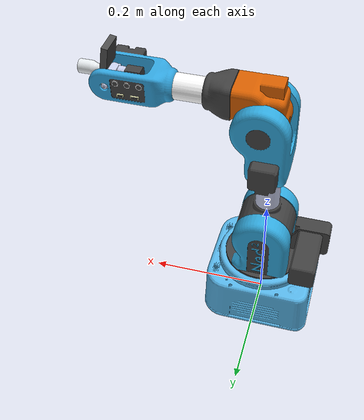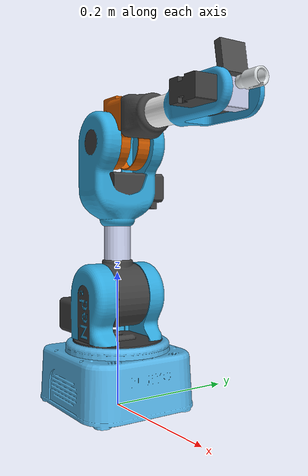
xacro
<?xml version="1.0"?>
<robot xmlns:xacro="http://www.ros.org/wiki/xacro" name="niryo_ned2">
    <!-- Including base robot -->
    <xacro:include filename="$(find niryo_robot_description)/urdf/ned2/niryo_ned2_gazebo.urdf.xacro"/>

    <!-- Properties -->
    <xacro:property name="cameraWidth" value="0.01"/>
    <xacro:property name="cameraHeight" value="0.037"/>
    <xacro:property name="cameraMass" value="0.05"/>

    <!-- Joint for camera -->
    <joint name="camera_joint" type="fixed">
        <axis xyz="0 0 1"/>
        <origin xyz="0 ${cameraHeight/2 + 0.02} 0" rpy="${PI/2} 0 ${deg_to_rad*10}"/>
        <parent link="wrist_link"/>
        <child link="camera_link"/>
    </joint>

    <!-- Camera link -->

    <link name="camera_link">
        <visual>
            <origin xyz="0 0 0" rpy="0 0 0"/>
            <geometry>
                <box size="${cameraWidth} ${cameraHeight} ${cameraHeight}"/>
            </geometry>
            <material name="DarkGrey"/>
        </visual>
    </link>

    <!-- Add gazebo settings to make the link an camera ! -->
    <gazebo reference="camera_link">
        <material>Gazebo/DarkGrey</material>
        <sensor type="camera" name="camera_gazebo">
            <update_rate>15.0</update_rate>
            <camera name="head">
                <!--69,33 degrees-->
                <horizontal_fov>1.21</horizontal_fov>
                <image>
                    <width>640</width>
                    <height>480</height>
                    <format>R8G8B8</format>
                </image>
                <clip>
                    <near>0.03</near>
                    <far>2</far>
                </clip>
                <distortion>
                    <k1>-0.4146402</k1>
                    <k2>0.2407384</k2>
                    <p1>-0.0</p1>
                    <p2>-0.0</p2>
                    <k3>-0.1040042</k3>
                    <center>0.5 0.5</center>
                </distortion>
            </camera>
            <plugin name="camera_controller" filename="libgazebo_ros_camera.so">
                <alwaysOn>true</alwaysOn>
                <updateRate>0.0</updateRate>
                <cameraName>gazebo_camera</cameraName>
                <imageTopicName>image_raw</imageTopicName>
                <cameraInfoTopicName>camera_info</cameraInfoTopicName>
                <frameName>camera_link</frameName>
            </plugin>
        </sensor>
    </gazebo>
</robot>

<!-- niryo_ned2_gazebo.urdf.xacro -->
<robot xmlns:xacro="http://www.ros.org/wiki/xacro" name="niryo_ned2">
    <!-- Enable Gazebo control-->
    <gazebo>
        <plugin name="gazebo_ros_control" filename="libgazebo_ros_control.so">
            <robotSimType>gazebo_ros_control/DefaultRobotHWSim</robotSimType>
        </plugin>
    </gazebo>

    <!-- Import Robot -->
    <xacro:include filename="$(find niryo_robot_description)/urdf/ned2/niryo_ned2.urdf.xacro"/>

    <!-- Import Transmission -->
    <xacro:include filename="$(find niryo_robot_description)/urdf/ned2/niryo_ned2.transmission.xacro"/>

</robot>

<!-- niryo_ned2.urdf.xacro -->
<robot xmlns:xacro="http://www.ros.org/wiki/xacro" name="niryo_ned2">
    <!-- Import Properties -->
    <xacro:include filename="$(find ned_description)/urdf/ned2/niryo_ned2_param.urdf.xacro"/>

    <!-- Links -->

    <link name="world"/>

    <link name="base_link">
        <inertial>
            <origin xyz="-0.008924 0.0001357 0.052392" rpy="0 0 0"/>
            <mass value="0.71142"/>
            <inertia ixx="0.0017" ixy="0.0" ixz="0.0" iyy="0.0017" iyz="0.0" izz="0.0032"/>
        </inertial>
        <visual>
            <origin xyz="0 0 0" rpy="0 0 0"/>
            <geometry>
                <mesh filename="package://ned_description/meshes/ned2/collada/base_link.dae"/>
            </geometry>
        </visual>
        <collision>
            <origin xyz="0 0 0" rpy="-${PI/2} 0 0"/>
            <geometry>
                <mesh filename="package://ned_description/meshes/ned2/stl/base_link.stl"/>
            </geometry>
        </collision>
    </link>

    <link name="led_ring_link">
    </link>

    <link name="shoulder_link">
        <inertial>
            <origin xyz="-0.031951 0.0080419 0.030675" rpy="0 0 0"/>
            <mass value="0.35056"/>
            <inertia ixx="0.00023875" ixy="2.3853E-08" ixz="2.0596E-06" iyy="0.00032638" iyz="-8.9319E-07"
                     izz="0.00030089"/>
        </inertial>
        <visual>
            <origin xyz="0 0 0" rpy="0 0 0"/>
            <geometry>
                <mesh filename="package://ned_description/meshes/ned2/collada/shoulder_link.dae"/>
            </geometry>
        </visual>
        <collision>
            <origin xyz="0 0 0" rpy="0 0 0"/>
            <geometry>
                <mesh filename="package://ned_description/meshes/ned2/stl/shoulder_link.stl"/>
            </geometry>
        </collision>
    </link>

    <link name="arm_link">
        <inertial>
            <origin xyz="-0.00096976 0.086432 0.0038832" rpy="0 ${PI} 0"/>
            <mass value="1.0838"/>
            <inertia ixx="0.008194" ixy="0.00015602" ixz="-3.434E-06" iyy="0.0011945" iyz="-0.00031298" izz="0.007915"/>
        </inertial>
        <visual>
            <origin xyz="0 0 0" rpy="0 ${PI} 0"/>
            <geometry>
                <mesh filename="package://ned_description/meshes/ned2/collada/arm_link.dae"/>
            </geometry>
        </visual>
        <collision>
            <origin xyz="0 0 0" rpy="0 ${PI} 0"/>
            <geometry>
                <mesh filename="package://ned_description/meshes/ned2/stl/arm_link.stl"/>
            </geometry>
        </collision>
    </link>

    <link name="elbow_link">
        <inertial>
            <origin xyz="-0.019703 0.037336 -1.7431E-09" rpy="0 ${PI} 0"/>
            <mass value="0.22126"/>
            <inertia ixx="0.00011754" ixy="-1.2314E-05" ixz="-6.2064E-11" iyy="0.00020851" iyz="9.2393E-11"
                     izz="0.00022753"/>
        </inertial>
        <visual>
            <origin xyz="0 0 0" rpy="0 ${PI} 0"/>
            <geometry>
                <mesh filename="package://ned_description/meshes/ned2/collada/elbow_link.dae"/>
            </geometry>
        </visual>
        <collision>
            <origin xyz="0 0 0" rpy="0 ${PI} 0"/>
            <geometry>
                <mesh filename="package://ned_description/meshes/ned2/stl/elbow_link.stl"/>
            </geometry>
        </collision>
    </link>

    <link name="forearm_link">
        <inertial>
            <origin xyz="-0.0049532 7.8351E-06 0.08106" rpy="0 0 0"/>
            <mass value="0.35686"/>
            <inertia ixx="0.0013664" ixy="-9.6367E-08" ixz="0.00013594" iyy="0.0014781" iyz="-1.4596E-07"
                     izz="0.00023715"/>
        </inertial>
        <visual>
            <origin xyz="0 0 0" rpy="0 0 0"/>
            <geometry>
                <mesh filename="package://ned_description/meshes/ned2/collada/forearm_link.dae"/>
            </geometry>
        </visual>
        <collision>
            <origin xyz="0 0 0" rpy="0 0 0"/>
            <geometry>
                <mesh filename="package://ned_description/meshes/ned2/stl/forearm_link.stl"/>
            </geometry>
        </collision>
    </link>

    <link name="wrist_link">
        <inertial>
            <origin xyz="-0.019666 0.037312 0.0" rpy="0 0 0"/>
            <mass value="0.22126"/>
            <inertia ixx="0.0015" ixy="0.0" ixz="0.0" iyy="0.0015" iyz="0.0" izz="0.0015"/>
        </inertial>
        <visual>
            <origin xyz="0 0 0"
                    rpy="0 0 0"/>
            <geometry>
                <mesh filename="package://ned_description/meshes/ned2/collada/wrist_link.dae"/>
            </geometry>
        </visual>
        <collision>
            <origin xyz="0 0 0"
                    rpy="0 0 0"/>
            <geometry>
                <mesh filename="package://ned_description/meshes/ned2/stl/wrist_link.stl"/>
            </geometry>
        </collision>
    </link>

    <link name="hand_link">
        <inertial>
            <origin xyz="0 0 0.009" rpy="0 0 0"/>
            <mass value="0.0070027"/>
            <inertia ixx="0.0015" ixy="0.0" ixz="0.0" iyy="0.0015" iyz="0.0" izz="0.0015"/>
        </inertial>
        <visual>
            <origin xyz="0 0 0" rpy="0 0 0"/>
            <geometry>
                <mesh filename="package://ned_description/meshes/ned2/collada/hand_link.dae"/>
            </geometry>
        </visual>
        <collision>
            <origin xyz="0 0 0" rpy="0 0 0"/>
            <geometry>
                <mesh filename="package://ned_description/meshes/ned2/stl/hand_link.stl"/>
            </geometry>
        </collision>
    </link>

    <link name="tool_link">
    </link>

    <!-- Joints -->

    <joint name="joint_world" type="fixed">
        <parent link="world"/>
        <child link="base_link"/>
        <origin xyz="0 0 0" rpy="0 0 0"/>
    </joint>

    <joint name="joint_1" type="revolute">
        <origin xyz="0 0 0.1013" rpy="0 0 ${-PI/2}"/>
        <parent link="base_link"/>
        <child link="shoulder_link"/>
        <axis xyz="0 0 1"/>
        <limit effort="10.0" velocity="10.0" lower="${(limit_low_shoulder_rotation + safety_pos_margin) * deg_to_rad}"
               upper="${(limit_up_shoulder_rotation - safety_pos_margin) * deg_to_rad}"/>
    </joint>

    <joint name="joint_2" type="revolute">
        <origin xyz="0 0 0.065" rpy="${PI/2} 0 ${PI/2}"/>
        <parent link="shoulder_link"/>
        <child link="arm_link"/>
        <axis xyz="0 0 1"/>
        <limit effort="10.0" velocity="8.0" lower="${(limit_low_arm_rotation + safety_pos_margin) * deg_to_rad}"
               upper="${(limit_up_arm_rotation - safety_pos_margin) * deg_to_rad}"/>

    </joint>

    <joint name="joint_3" type="revolute">
        <origin xyz="0.012 0.221 0" rpy="0 0 0"/>
        <parent link="arm_link"/>
        <child link="elbow_link"/>
        <axis xyz="0 0 1"/>
        <limit effort="7.0" velocity="8.0" lower="${(limit_low_elbow_rotation + safety_pos_margin) * deg_to_rad}"
               upper="${(limit_up_elbow_rotation - safety_pos_margin) * deg_to_rad}"/>

    </joint>

    <joint name="joint_4" type="revolute">
        <origin xyz="0.065 0.0325 0" rpy="0 ${PI/2} 0"/>
        <parent link="elbow_link"/>
        <child link="forearm_link"/>
        <axis xyz="0 0 1"/>
        <limit effort="7.0" velocity="2.0" lower="${(limit_low_forearm_rotation + safety_pos_margin) * deg_to_rad}"
               upper="${(limit_up_forearm_rotation - safety_pos_margin) * deg_to_rad}"/>
    </joint>

    <joint name="joint_5" type="revolute">
        <origin xyz="0 0 0.17" rpy="${PI} ${-PI/2} ${PI}"/>
        <parent link="forearm_link"/>
        <child link="wrist_link"/>
        <axis xyz="0 0 1"/>
        <limit effort="6.0" velocity="2.0" lower="${(limit_low_wrist_rotation + safety_pos_margin) * deg_to_rad}"
               upper="${(limit_up_wrist_rotation - safety_pos_margin) * deg_to_rad}"/>

    </joint>

    <joint name="joint_6" type="revolute">
        <origin xyz="0.0197 0.00925 0" rpy="0 ${PI/2} 0"/>
        <parent link="wrist_link"/>
        <child link="hand_link"/>
        <axis xyz="0 0 1"/>
        <limit effort="5.0" velocity="2.0" lower="${(limit_low_hand_rotation + safety_pos_margin) * deg_to_rad}"
               upper="${(limit_up_hand_rotation - safety_pos_margin) * deg_to_rad}"/>
    </joint>

    <joint name="hand_tool_joint" type="fixed">
        <parent link="hand_link"/>
        <child link="tool_link"/>
        <origin xyz="0 0 ${distance_hand_tool}" rpy="${-PI/2} ${-PI/2} 0"/>
    </joint>

    <joint name="joint_led_ring" type="fixed">
        <parent link="world"/>
        <child link="led_ring_link"/>
        <origin xyz="0 0 0.0923" rpy="0 0 0"/>
    </joint>

</robot>

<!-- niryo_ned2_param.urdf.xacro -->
<robot xmlns:xacro="http://www.ros.org/wiki/xacro" name="niryo_ned2">
    <xacro:property name="PI" value="3.14159265359"/>
    <xacro:property name="deg_to_rad" value="${PI/180}"/>

    <!-- Properties -->

    <xacro:property name="distance_hand_tool" value="0.0285"/>

    <xacro:property name="limit_low_shoulder_rotation" value="-171.88"/>
    <xacro:property name="limit_up_shoulder_rotation" value="171.88"/>
    <xacro:property name="limit_low_arm_rotation" value="-105.0"/>
    <xacro:property name="limit_up_arm_rotation" value="34.96"/>
    <xacro:property name="limit_low_elbow_rotation" value="-76.78"/>
    <xacro:property name="limit_up_elbow_rotation" value="89.96"/>
    <xacro:property name="limit_low_forearm_rotation" value="-119.75"/>
    <xacro:property name="limit_up_forearm_rotation" value="119.75"/>
    <xacro:property name="limit_low_wrist_rotation" value="-110.01"/>
    <xacro:property name="limit_up_wrist_rotation" value="110.17"/>
    <xacro:property name="limit_low_hand_rotation" value="-144.96"/>
    <xacro:property name="limit_up_hand_rotation" value="144.96"/>

    <xacro:property name="safety_pos_margin" value="0.0"/>

</robot>
